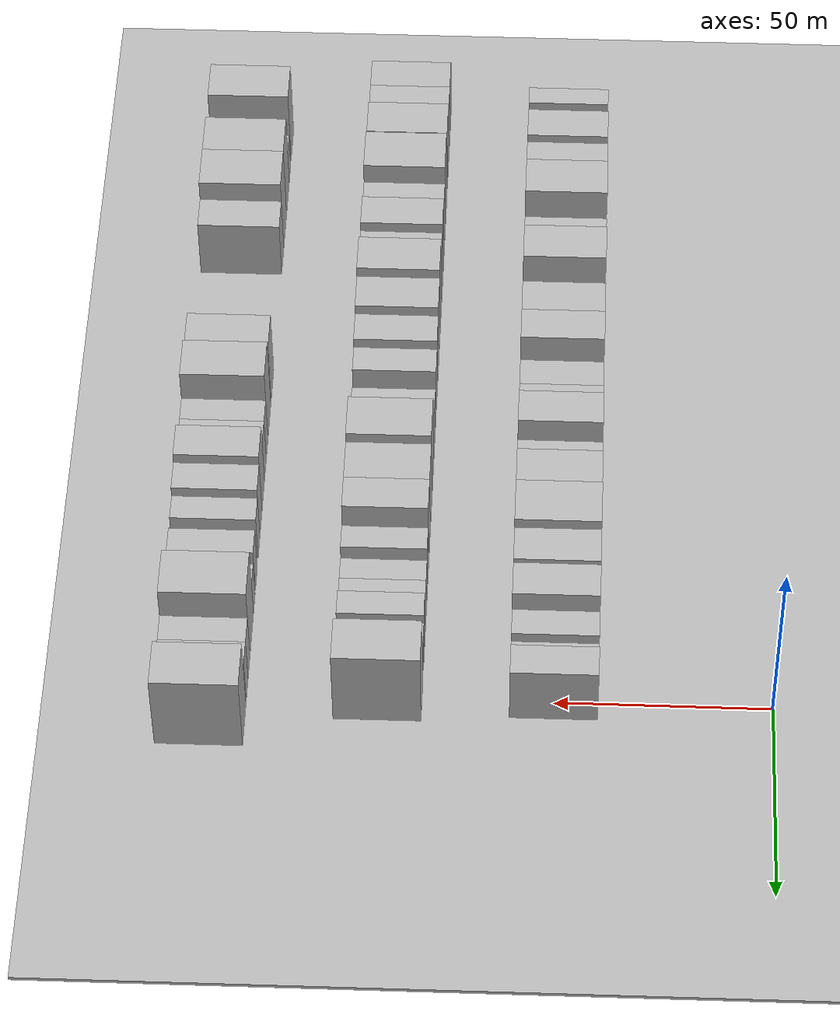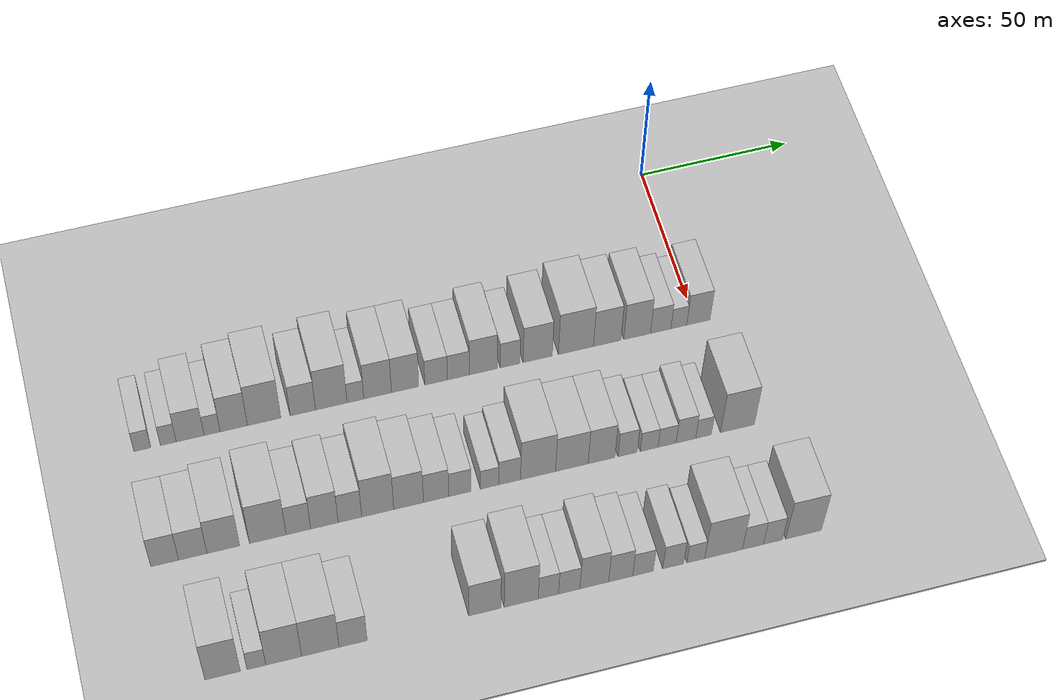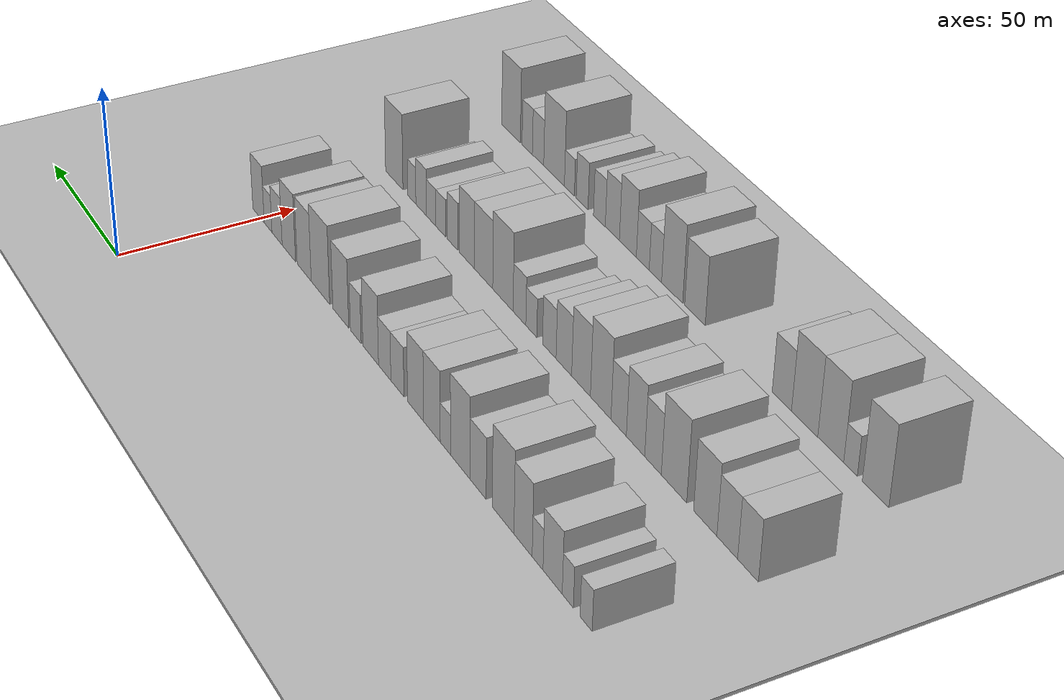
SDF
<sdf version="1.6">
 <world name="default">
  <include><name>ground_plane_1</name><uri>model://HANNAS_ground_plane</uri></include>
  <include>
   <name>ground_plane_2</name>
   <uri>model://HANNAS_ground_plane</uri>
   <pose>100 0 0  0 0 0</pose>
  </include>
  <model name="building_23">
   <static>1</static>
   <pose>50.0000 -179.2774 0 0.000000 0.000000 0.000000</pose>
   <link name="link">
    <pose>0 0 6.00 0 0 0</pose>
    <collision name="collision"><geometry><box><size>20.0000 5.2801 12.0000</size></box></geometry></collision>
    <visual name="visual">
     <cast_shadows>0</cast_shadows>
     <geometry><box><size>20.0000 5.2801 12.0000</size></box></geometry>
     <material>
      <script>
       <uri>model://HANNAS_wall/materials/scripts</uri>
       <uri>model://HANNAS_wall/materials/textures</uri>
       <name>vrc/HANNAS_wall</name>
      </script>
     </material>
    </visual>
   </link>
  </model>
  <model name="building_24">
   <static>1</static>
   <pose>50.0000 -171.1442 0 0.000000 0.000000 0.000000</pose>
   <link name="link">
    <pose>0 0 6.00 0 0 0</pose>
    <collision name="collision"><geometry><box><size>20.0000 4.9862 12.0000</size></box></geometry></collision>
    <visual name="visual">
     <cast_shadows>0</cast_shadows>
     <geometry><box><size>20.0000 4.9862 12.0000</size></box></geometry>
     <material>
      <script>
       <uri>model://HANNAS_wall/materials/scripts</uri>
       <uri>model://HANNAS_wall/materials/textures</uri>
       <name>vrc/HANNAS_wall</name>
      </script>
     </material>
    </visual>
   </link>
  </model>
  <model name="building_25">
   <static>1</static>
   <pose>50.0000 -164.2541 0 0.000000 0.000000 0.000000</pose>
   <link name="link">
    <pose>0 0 9.00 0 0 0</pose>
    <collision name="collision"><geometry><box><size>20.0000 8.7940 18.0000</size></box></geometry></collision>
    <visual name="visual">
     <cast_shadows>0</cast_shadows>
     <geometry><box><size>20.0000 8.7940 18.0000</size></box></geometry>
     <material>
      <script>
       <uri>model://HANNAS_wall/materials/scripts</uri>
       <uri>model://HANNAS_wall/materials/textures</uri>
       <name>vrc/HANNAS_wall</name>
      </script>
     </material>
    </visual>
   </link>
  </model>
  <model name="building_26">
   <static>1</static>
   <pose>50.0000 -157.3276 0 0.000000 0.000000 0.000000</pose>
   <link name="link">
    <pose>0 0 6.00 0 0 0</pose>
    <collision name="collision"><geometry><box><size>20.0000 5.0589 12.0000</size></box></geometry></collision>
    <visual name="visual">
     <cast_shadows>0</cast_shadows>
     <geometry><box><size>20.0000 5.0589 12.0000</size></box></geometry>
     <material>
      <script>
       <uri>model://HANNAS_wall/materials/scripts</uri>
       <uri>model://HANNAS_wall/materials/textures</uri>
       <name>vrc/HANNAS_wall</name>
      </script>
     </material>
    </visual>
   </link>
  </model>
  <model name="building_27">
   <static>1</static>
   <pose>50.0000 -150.4753 0 0.000000 0.000000 0.000000</pose>
   <link name="link">
    <pose>0 0 10.50 0 0 0</pose>
    <collision name="collision"><geometry><box><size>20.0000 8.6458 21.0000</size></box></geometry></collision>
    <visual name="visual">
     <cast_shadows>0</cast_shadows>
     <geometry><box><size>20.0000 8.6458 21.0000</size></box></geometry>
     <material>
      <script>
       <uri>model://HANNAS_wall/materials/scripts</uri>
       <uri>model://HANNAS_wall/materials/textures</uri>
       <name>vrc/HANNAS_wall</name>
      </script>
     </material>
    </visual>
   </link>
  </model>
  <model name="building_28">
   <static>1</static>
   <pose>50.0000 -140.8571 0 0.000000 0.000000 0.000000</pose>
   <link name="link">
    <pose>0 0 12.00 0 0 0</pose>
    <collision name="collision"><geometry><box><size>20.0000 10.5905 24.0000</size></box></geometry></collision>
    <visual name="visual">
     <cast_shadows>0</cast_shadows>
     <geometry><box><size>20.0000 10.5905 24.0000</size></box></geometry>
     <material>
      <script>
       <uri>model://HANNAS_wall/materials/scripts</uri>
       <uri>model://HANNAS_wall/materials/textures</uri>
       <name>vrc/HANNAS_wall</name>
      </script>
     </material>
    </visual>
   </link>
  </model>
  <model name="building_29">
   <static>1</static>
   <pose>50.0000 -128.5230 0 0.000000 0.000000 0.000000</pose>
   <link name="link">
    <pose>0 0 9.00 0 0 0</pose>
    <collision name="collision"><geometry><box><size>20.0000 8.0777 18.0000</size></box></geometry></collision>
    <visual name="visual">
     <cast_shadows>0</cast_shadows>
     <geometry><box><size>20.0000 8.0777 18.0000</size></box></geometry>
     <material>
      <script>
       <uri>model://HANNAS_wall/materials/scripts</uri>
       <uri>model://HANNAS_wall/materials/textures</uri>
       <name>vrc/HANNAS_wall</name>
      </script>
     </material>
    </visual>
   </link>
  </model>
  <model name="building_30">
   <static>1</static>
   <pose>50.0000 -119.4257 0 0.000000 0.000000 0.000000</pose>
   <link name="link">
    <pose>0 0 12.00 0 0 0</pose>
    <collision name="collision"><geometry><box><size>20.0000 10.1169 24.0000</size></box></geometry></collision>
    <visual name="visual">
     <cast_shadows>0</cast_shadows>
     <geometry><box><size>20.0000 10.1169 24.0000</size></box></geometry>
     <material>
      <script>
       <uri>model://HANNAS_wall/materials/scripts</uri>
       <uri>model://HANNAS_wall/materials/textures</uri>
       <name>vrc/HANNAS_wall</name>
      </script>
     </material>
    </visual>
   </link>
  </model>
  <model name="building_31">
   <static>1</static>
   <pose>50.0000 -111.6893 0 0.000000 0.000000 0.000000</pose>
   <link name="link">
    <pose>0 0 6.00 0 0 0</pose>
    <collision name="collision"><geometry><box><size>20.0000 5.3561 12.0000</size></box></geometry></collision>
    <visual name="visual">
     <cast_shadows>0</cast_shadows>
     <geometry><box><size>20.0000 5.3561 12.0000</size></box></geometry>
     <material>
      <script>
       <uri>model://HANNAS_wall/materials/scripts</uri>
       <uri>model://HANNAS_wall/materials/textures</uri>
       <name>vrc/HANNAS_wall</name>
      </script>
     </material>
    </visual>
   </link>
  </model>
  <model name="building_32">
   <static>1</static>
   <pose>50.0000 -104.5540 0 0.000000 0.000000 0.000000</pose>
   <link name="link">
    <pose>0 0 10.50 0 0 0</pose>
    <collision name="collision"><geometry><box><size>20.0000 8.9144 21.0000</size></box></geometry></collision>
    <visual name="visual">
     <cast_shadows>0</cast_shadows>
     <geometry><box><size>20.0000 8.9144 21.0000</size></box></geometry>
     <material>
      <script>
       <uri>model://HANNAS_wall/materials/scripts</uri>
       <uri>model://HANNAS_wall/materials/textures</uri>
       <name>vrc/HANNAS_wall</name>
      </script>
     </material>
    </visual>
   </link>
  </model>
  <model name="building_33">
   <static>1</static>
   <pose>50.0000 -95.7066 0 0.000000 0.000000 0.000000</pose>
   <link name="link">
    <pose>0 0 10.50 0 0 0</pose>
    <collision name="collision"><geometry><box><size>20.0000 8.7805 21.0000</size></box></geometry></collision>
    <visual name="visual">
     <cast_shadows>0</cast_shadows>
     <geometry><box><size>20.0000 8.7805 21.0000</size></box></geometry>
     <material>
      <script>
       <uri>model://HANNAS_wall/materials/scripts</uri>
       <uri>model://HANNAS_wall/materials/textures</uri>
       <name>vrc/HANNAS_wall</name>
      </script>
     </material>
    </visual>
   </link>
  </model>
  <model name="building_34">
   <static>1</static>
   <pose>50.0000 -85.6473 0 0.000000 0.000000 0.000000</pose>
   <link name="link">
    <pose>0 0 7.50 0 0 0</pose>
    <collision name="collision"><geometry><box><size>20.0000 7.3380 15.0000</size></box></geometry></collision>
    <visual name="visual">
     <cast_shadows>0</cast_shadows>
     <geometry><box><size>20.0000 7.3380 15.0000</size></box></geometry>
     <material>
      <script>
       <uri>model://HANNAS_wall/materials/scripts</uri>
       <uri>model://HANNAS_wall/materials/textures</uri>
       <name>vrc/HANNAS_wall</name>
      </script>
     </material>
    </visual>
   </link>
  </model>
  <model name="building_35">
   <static>1</static>
   <pose>50.0000 -78.4366 0 0.000000 0.000000 0.000000</pose>
   <link name="link">
    <pose>0 0 7.50 0 0 0</pose>
    <collision name="collision"><geometry><box><size>20.0000 7.0835 15.0000</size></box></geometry></collision>
    <visual name="visual">
     <cast_shadows>0</cast_shadows>
     <geometry><box><size>20.0000 7.0835 15.0000</size></box></geometry>
     <material>
      <script>
       <uri>model://HANNAS_wall/materials/scripts</uri>
       <uri>model://HANNAS_wall/materials/textures</uri>
       <name>vrc/HANNAS_wall</name>
      </script>
     </material>
    </visual>
   </link>
  </model>
  <model name="building_36">
   <static>1</static>
   <pose>50.0000 -70.3378 0 0.000000 0.000000 0.000000</pose>
   <link name="link">
    <pose>0 0 10.50 0 0 0</pose>
    <collision name="collision"><geometry><box><size>20.0000 9.1141 21.0000</size></box></geometry></collision>
    <visual name="visual">
     <cast_shadows>0</cast_shadows>
     <geometry><box><size>20.0000 9.1141 21.0000</size></box></geometry>
     <material>
      <script>
       <uri>model://HANNAS_wall/materials/scripts</uri>
       <uri>model://HANNAS_wall/materials/textures</uri>
       <name>vrc/HANNAS_wall</name>
      </script>
     </material>
    </visual>
   </link>
  </model>
  <model name="building_37">
   <static>1</static>
   <pose>50.0000 -61.5664 0 0.000000 0.000000 0.000000</pose>
   <link name="link">
    <pose>0 0 7.50 0 0 0</pose>
    <collision name="collision"><geometry><box><size>20.0000 6.4287 15.0000</size></box></geometry></collision>
    <visual name="visual">
     <cast_shadows>0</cast_shadows>
     <geometry><box><size>20.0000 6.4287 15.0000</size></box></geometry>
     <material>
      <script>
       <uri>model://HANNAS_wall/materials/scripts</uri>
       <uri>model://HANNAS_wall/materials/textures</uri>
       <name>vrc/HANNAS_wall</name>
      </script>
     </material>
    </visual>
   </link>
  </model>
  <model name="building_38">
   <static>1</static>
   <pose>50.0000 -52.5485 0 0.000000 0.000000 0.000000</pose>
   <link name="link">
    <pose>0 0 10.50 0 0 0</pose>
    <collision name="collision"><geometry><box><size>20.0000 9.6071 21.0000</size></box></geometry></collision>
    <visual name="visual">
     <cast_shadows>0</cast_shadows>
     <geometry><box><size>20.0000 9.6071 21.0000</size></box></geometry>
     <material>
      <script>
       <uri>model://HANNAS_wall/materials/scripts</uri>
       <uri>model://HANNAS_wall/materials/textures</uri>
       <name>vrc/HANNAS_wall</name>
      </script>
     </material>
    </visual>
   </link>
  </model>
  <model name="building_39">
   <static>1</static>
   <pose>50.0000 -39.9715 0 0.000000 0.000000 0.000000</pose>
   <link name="link">
    <pose>0 0 12.00 0 0 0</pose>
    <collision name="collision"><geometry><box><size>20.0000 11.5470 24.0000</size></box></geometry></collision>
    <visual name="visual">
     <cast_shadows>0</cast_shadows>
     <geometry><box><size>20.0000 11.5470 24.0000</size></box></geometry>
     <material>
      <script>
       <uri>model://HANNAS_wall/materials/scripts</uri>
       <uri>model://HANNAS_wall/materials/textures</uri>
       <name>vrc/HANNAS_wall</name>
      </script>
     </material>
    </visual>
   </link>
  </model>
  <model name="building_40">
   <static>1</static>
   <pose>50.0000 -29.6646 0 0.000000 0.000000 0.000000</pose>
   <link name="link">
    <pose>0 0 10.50 0 0 0</pose>
    <collision name="collision"><geometry><box><size>20.0000 9.0667 21.0000</size></box></geometry></collision>
    <visual name="visual">
     <cast_shadows>0</cast_shadows>
     <geometry><box><size>20.0000 9.0667 21.0000</size></box></geometry>
     <material>
      <script>
       <uri>model://HANNAS_wall/materials/scripts</uri>
       <uri>model://HANNAS_wall/materials/textures</uri>
       <name>vrc/HANNAS_wall</name>
      </script>
     </material>
    </visual>
   </link>
  </model>
  <model name="building_41">
   <static>1</static>
   <pose>50.0000 -19.7086 0 0.000000 0.000000 0.000000</pose>
   <link name="link">
    <pose>0 0 10.50 0 0 0</pose>
    <collision name="collision"><geometry><box><size>20.0000 8.8454 21.0000</size></box></geometry></collision>
    <visual name="visual">
     <cast_shadows>0</cast_shadows>
     <geometry><box><size>20.0000 8.8454 21.0000</size></box></geometry>
     <material>
      <script>
       <uri>model://HANNAS_wall/materials/scripts</uri>
       <uri>model://HANNAS_wall/materials/textures</uri>
       <name>vrc/HANNAS_wall</name>
      </script>
     </material>
    </visual>
   </link>
  </model>
  <model name="building_42">
   <static>1</static>
   <pose>50.0000 -11.8778 0 0.000000 0.000000 0.000000</pose>
   <link name="link">
    <pose>0 0 7.50 0 0 0</pose>
    <collision name="collision"><geometry><box><size>20.0000 6.8161 15.0000</size></box></geometry></collision>
    <visual name="visual">
     <cast_shadows>0</cast_shadows>
     <geometry><box><size>20.0000 6.8161 15.0000</size></box></geometry>
     <material>
      <script>
       <uri>model://HANNAS_wall/materials/scripts</uri>
       <uri>model://HANNAS_wall/materials/textures</uri>
       <name>vrc/HANNAS_wall</name>
      </script>
     </material>
    </visual>
   </link>
  </model>
  <model name="building_43">
   <static>1</static>
   <pose>50.0000 -5.8425 0 0.000000 0.000000 0.000000</pose>
   <link name="link">
    <pose>0 0 6.00 0 0 0</pose>
    <collision name="collision"><geometry><box><size>20.0000 5.2546 12.0000</size></box></geometry></collision>
    <visual name="visual">
     <cast_shadows>0</cast_shadows>
     <geometry><box><size>20.0000 5.2546 12.0000</size></box></geometry>
     <material>
      <script>
       <uri>model://HANNAS_wall/materials/scripts</uri>
       <uri>model://HANNAS_wall/materials/textures</uri>
       <name>vrc/HANNAS_wall</name>
      </script>
     </material>
    </visual>
   </link>
  </model>
  <model name="building_44">
   <static>1</static>
   <pose>50.0000 0.6852 0 0.000000 0.000000 0.000000</pose>
   <link name="link">
    <pose>0 0 9.00 0 0 0</pose>
    <collision name="collision"><geometry><box><size>20.0000 7.8006 18.0000</size></box></geometry></collision>
    <visual name="visual">
     <cast_shadows>0</cast_shadows>
     <geometry><box><size>20.0000 7.8006 18.0000</size></box></geometry>
     <material>
      <script>
       <uri>model://HANNAS_wall/materials/scripts</uri>
       <uri>model://HANNAS_wall/materials/textures</uri>
       <name>vrc/HANNAS_wall</name>
      </script>
     </material>
    </visual>
   </link>
  </model>
  <model name="building_109">
   <static>1</static>
   <pose>90.0000 -179.9426 0 0.000000 0.000000 0.000000</pose>
   <link name="link">
    <pose>0 0 9.00 0 0 0</pose>
    <collision name="collision"><geometry><box><size>20.0000 8.5297 18.0000</size></box></geometry></collision>
    <visual name="visual">
     <cast_shadows>0</cast_shadows>
     <geometry><box><size>20.0000 8.5297 18.0000</size></box></geometry>
     <material>
      <script>
       <uri>model://HANNAS_wall/materials/scripts</uri>
       <uri>model://HANNAS_wall/materials/textures</uri>
       <name>vrc/HANNAS_wall</name>
      </script>
     </material>
    </visual>
   </link>
  </model>
  <model name="building_110">
   <static>1</static>
   <pose>90.0000 -171.3326 0 0.000000 0.000000 0.000000</pose>
   <link name="link">
    <pose>0 0 9.00 0 0 0</pose>
    <collision name="collision"><geometry><box><size>20.0000 8.6903 18.0000</size></box></geometry></collision>
    <visual name="visual">
     <cast_shadows>0</cast_shadows>
     <geometry><box><size>20.0000 8.6903 18.0000</size></box></geometry>
     <material>
      <script>
       <uri>model://HANNAS_wall/materials/scripts</uri>
       <uri>model://HANNAS_wall/materials/textures</uri>
       <name>vrc/HANNAS_wall</name>
      </script>
     </material>
    </visual>
   </link>
  </model>
  <model name="building_111">
   <static>1</static>
   <pose>90.0000 -161.9852 0 0.000000 0.000000 0.000000</pose>
   <link name="link">
    <pose>0 0 10.50 0 0 0</pose>
    <collision name="collision"><geometry><box><size>20.0000 10.0046 21.0000</size></box></geometry></collision>
    <visual name="visual">
     <cast_shadows>0</cast_shadows>
     <geometry><box><size>20.0000 10.0046 21.0000</size></box></geometry>
     <material>
      <script>
       <uri>model://HANNAS_wall/materials/scripts</uri>
       <uri>model://HANNAS_wall/materials/textures</uri>
       <name>vrc/HANNAS_wall</name>
      </script>
     </material>
    </visual>
   </link>
  </model>
  <model name="building_112">
   <static>1</static>
   <pose>90.0000 -148.3180 0 0.000000 0.000000 0.000000</pose>
   <link name="link">
    <pose>0 0 12.00 0 0 0</pose>
    <collision name="collision"><geometry><box><size>20.0000 11.3298 24.0000</size></box></geometry></collision>
    <visual name="visual">
     <cast_shadows>0</cast_shadows>
     <geometry><box><size>20.0000 11.3298 24.0000</size></box></geometry>
     <material>
      <script>
       <uri>model://HANNAS_wall/materials/scripts</uri>
       <uri>model://HANNAS_wall/materials/textures</uri>
       <name>vrc/HANNAS_wall</name>
      </script>
     </material>
    </visual>
   </link>
  </model>
  <model name="building_113">
   <static>1</static>
   <pose>90.0000 -138.8580 0 0.000000 0.000000 0.000000</pose>
   <link name="link">
    <pose>0 0 9.00 0 0 0</pose>
    <collision name="collision"><geometry><box><size>20.0000 7.5901 18.0000</size></box></geometry></collision>
    <visual name="visual">
     <cast_shadows>0</cast_shadows>
     <geometry><box><size>20.0000 7.5901 18.0000</size></box></geometry>
     <material>
      <script>
       <uri>model://HANNAS_wall/materials/scripts</uri>
       <uri>model://HANNAS_wall/materials/textures</uri>
       <name>vrc/HANNAS_wall</name>
      </script>
     </material>
    </visual>
   </link>
  </model>
  <model name="building_114">
   <static>1</static>
   <pose>90.0000 -130.7820 0 0.000000 0.000000 0.000000</pose>
   <link name="link">
    <pose>0 0 10.50 0 0 0</pose>
    <collision name="collision"><geometry><box><size>20.0000 8.5620 21.0000</size></box></geometry></collision>
    <visual name="visual">
     <cast_shadows>0</cast_shadows>
     <geometry><box><size>20.0000 8.5620 21.0000</size></box></geometry>
     <material>
      <script>
       <uri>model://HANNAS_wall/materials/scripts</uri>
       <uri>model://HANNAS_wall/materials/textures</uri>
       <name>vrc/HANNAS_wall</name>
      </script>
     </material>
    </visual>
   </link>
  </model>
  <model name="building_115">
   <static>1</static>
   <pose>90.0000 -122.8321 0 0.000000 0.000000 0.000000</pose>
   <link name="link">
    <pose>0 0 9.00 0 0 0</pose>
    <collision name="collision"><geometry><box><size>20.0000 7.3377 18.0000</size></box></geometry></collision>
    <visual name="visual">
     <cast_shadows>0</cast_shadows>
     <geometry><box><size>20.0000 7.3377 18.0000</size></box></geometry>
     <material>
      <script>
       <uri>model://HANNAS_wall/materials/scripts</uri>
       <uri>model://HANNAS_wall/materials/textures</uri>
       <name>vrc/HANNAS_wall</name>
      </script>
     </material>
    </visual>
   </link>
  </model>
  <model name="building_116">
   <static>1</static>
   <pose>90.0000 -114.1641 0 0.000000 0.000000 0.000000</pose>
   <link name="link">
    <pose>0 0 12.00 0 0 0</pose>
    <collision name="collision"><geometry><box><size>20.0000 9.9984 24.0000</size></box></geometry></collision>
    <visual name="visual">
     <cast_shadows>0</cast_shadows>
     <geometry><box><size>20.0000 9.9984 24.0000</size></box></geometry>
     <material>
      <script>
       <uri>model://HANNAS_wall/materials/scripts</uri>
       <uri>model://HANNAS_wall/materials/textures</uri>
       <name>vrc/HANNAS_wall</name>
      </script>
     </material>
    </visual>
   </link>
  </model>
  <model name="building_117">
   <static>1</static>
   <pose>90.0000 -104.4893 0 0.000000 0.000000 0.000000</pose>
   <link name="link">
    <pose>0 0 10.50 0 0 0</pose>
    <collision name="collision"><geometry><box><size>20.0000 9.3511 21.0000</size></box></geometry></collision>
    <visual name="visual">
     <cast_shadows>0</cast_shadows>
     <geometry><box><size>20.0000 9.3511 21.0000</size></box></geometry>
     <material>
      <script>
       <uri>model://HANNAS_wall/materials/scripts</uri>
       <uri>model://HANNAS_wall/materials/textures</uri>
       <name>vrc/HANNAS_wall</name>
      </script>
     </material>
    </visual>
   </link>
  </model>
  <model name="building_118">
   <static>1</static>
   <pose>90.0000 -95.8383 0 0.000000 0.000000 0.000000</pose>
   <link name="link">
    <pose>0 0 9.00 0 0 0</pose>
    <collision name="collision"><geometry><box><size>20.0000 7.9510 18.0000</size></box></geometry></collision>
    <visual name="visual">
     <cast_shadows>0</cast_shadows>
     <geometry><box><size>20.0000 7.9510 18.0000</size></box></geometry>
     <material>
      <script>
       <uri>model://HANNAS_wall/materials/scripts</uri>
       <uri>model://HANNAS_wall/materials/textures</uri>
       <name>vrc/HANNAS_wall</name>
      </script>
     </material>
    </visual>
   </link>
  </model>
  <model name="building_119">
   <static>1</static>
   <pose>90.0000 -88.3552 0 0.000000 0.000000 0.000000</pose>
   <link name="link">
    <pose>0 0 7.50 0 0 0</pose>
    <collision name="collision"><geometry><box><size>20.0000 7.0152 15.0000</size></box></geometry></collision>
    <visual name="visual">
     <cast_shadows>0</cast_shadows>
     <geometry><box><size>20.0000 7.0152 15.0000</size></box></geometry>
     <material>
      <script>
       <uri>model://HANNAS_wall/materials/scripts</uri>
       <uri>model://HANNAS_wall/materials/textures</uri>
       <name>vrc/HANNAS_wall</name>
      </script>
     </material>
    </visual>
   </link>
  </model>
  <model name="building_120">
   <static>1</static>
   <pose>90.0000 -78.9413 0 0.000000 0.000000 0.000000</pose>
   <link name="link">
    <pose>0 0 6.00 0 0 0</pose>
    <collision name="collision"><geometry><box><size>20.0000 5.8127 12.0000</size></box></geometry></collision>
    <visual name="visual">
     <cast_shadows>0</cast_shadows>
     <geometry><box><size>20.0000 5.8127 12.0000</size></box></geometry>
     <material>
      <script>
       <uri>model://HANNAS_wall/materials/scripts</uri>
       <uri>model://HANNAS_wall/materials/textures</uri>
       <name>vrc/HANNAS_wall</name>
      </script>
     </material>
    </visual>
   </link>
  </model>
  <model name="building_121">
   <static>1</static>
   <pose>90.0000 -72.5960 0 0.000000 0.000000 0.000000</pose>
   <link name="link">
    <pose>0 0 7.50 0 0 0</pose>
    <collision name="collision"><geometry><box><size>20.0000 6.8779 15.0000</size></box></geometry></collision>
    <visual name="visual">
     <cast_shadows>0</cast_shadows>
     <geometry><box><size>20.0000 6.8779 15.0000</size></box></geometry>
     <material>
      <script>
       <uri>model://HANNAS_wall/materials/scripts</uri>
       <uri>model://HANNAS_wall/materials/textures</uri>
       <name>vrc/HANNAS_wall</name>
      </script>
     </material>
    </visual>
   </link>
  </model>
  <model name="building_122">
   <static>1</static>
   <pose>90.0000 -63.5670 0 0.000000 0.000000 0.000000</pose>
   <link name="link">
    <pose>0 0 12.00 0 0 0</pose>
    <collision name="collision"><geometry><box><size>20.0000 11.1801 24.0000</size></box></geometry></collision>
    <visual name="visual">
     <cast_shadows>0</cast_shadows>
     <geometry><box><size>20.0000 11.1801 24.0000</size></box></geometry>
     <material>
      <script>
       <uri>model://HANNAS_wall/materials/scripts</uri>
       <uri>model://HANNAS_wall/materials/textures</uri>
       <name>vrc/HANNAS_wall</name>
      </script>
     </material>
    </visual>
   </link>
  </model>
  <model name="building_123">
   <static>1</static>
   <pose>90.0000 -52.7587 0 0.000000 0.000000 0.000000</pose>
   <link name="link">
    <pose>0 0 10.50 0 0 0</pose>
    <collision name="collision"><geometry><box><size>20.0000 10.4363 21.0000</size></box></geometry></collision>
    <visual name="visual">
     <cast_shadows>0</cast_shadows>
     <geometry><box><size>20.0000 10.4363 21.0000</size></box></geometry>
     <material>
      <script>
       <uri>model://HANNAS_wall/materials/scripts</uri>
       <uri>model://HANNAS_wall/materials/textures</uri>
       <name>vrc/HANNAS_wall</name>
      </script>
     </material>
    </visual>
   </link>
  </model>
  <model name="building_124">
   <static>1</static>
   <pose>90.0000 -43.2517 0 0.000000 0.000000 0.000000</pose>
   <link name="link">
    <pose>0 0 10.50 0 0 0</pose>
    <collision name="collision"><geometry><box><size>20.0000 8.5777 21.0000</size></box></geometry></collision>
    <visual name="visual">
     <cast_shadows>0</cast_shadows>
     <geometry><box><size>20.0000 8.5777 21.0000</size></box></geometry>
     <material>
      <script>
       <uri>model://HANNAS_wall/materials/scripts</uri>
       <uri>model://HANNAS_wall/materials/textures</uri>
       <name>vrc/HANNAS_wall</name>
      </script>
     </material>
    </visual>
   </link>
  </model>
  <model name="building_125">
   <static>1</static>
   <pose>90.0000 -34.8778 0 0.000000 0.000000 0.000000</pose>
   <link name="link">
    <pose>0 0 7.50 0 0 0</pose>
    <collision name="collision"><geometry><box><size>20.0000 6.1701 15.0000</size></box></geometry></collision>
    <visual name="visual">
     <cast_shadows>0</cast_shadows>
     <geometry><box><size>20.0000 6.1701 15.0000</size></box></geometry>
     <material>
      <script>
       <uri>model://HANNAS_wall/materials/scripts</uri>
       <uri>model://HANNAS_wall/materials/textures</uri>
       <name>vrc/HANNAS_wall</name>
      </script>
     </material>
    </visual>
   </link>
  </model>
  <model name="building_126">
   <static>1</static>
   <pose>90.0000 -27.9295 0 0.000000 0.000000 0.000000</pose>
   <link name="link">
    <pose>0 0 6.00 0 0 0</pose>
    <collision name="collision"><geometry><box><size>20.0000 5.7265 12.0000</size></box></geometry></collision>
    <visual name="visual">
     <cast_shadows>0</cast_shadows>
     <geometry><box><size>20.0000 5.7265 12.0000</size></box></geometry>
     <material>
      <script>
       <uri>model://HANNAS_wall/materials/scripts</uri>
       <uri>model://HANNAS_wall/materials/textures</uri>
       <name>vrc/HANNAS_wall</name>
      </script>
     </material>
    </visual>
   </link>
  </model>
  <model name="building_127">
   <static>1</static>
   <pose>90.0000 -22.1473 0 0.000000 0.000000 0.000000</pose>
   <link name="link">
    <pose>0 0 6.00 0 0 0</pose>
    <collision name="collision"><geometry><box><size>20.0000 5.8379 12.0000</size></box></geometry></collision>
    <visual name="visual">
     <cast_shadows>0</cast_shadows>
     <geometry><box><size>20.0000 5.8379 12.0000</size></box></geometry>
     <material>
      <script>
       <uri>model://HANNAS_wall/materials/scripts</uri>
       <uri>model://HANNAS_wall/materials/textures</uri>
       <name>vrc/HANNAS_wall</name>
      </script>
     </material>
    </visual>
   </link>
  </model>
  <model name="building_128">
   <static>1</static>
   <pose>90.0000 -16.0392 0 0.000000 0.000000 0.000000</pose>
   <link name="link">
    <pose>0 0 7.50 0 0 0</pose>
    <collision name="collision"><geometry><box><size>20.0000 6.3785 15.0000</size></box></geometry></collision>
    <visual name="visual">
     <cast_shadows>0</cast_shadows>
     <geometry><box><size>20.0000 6.3785 15.0000</size></box></geometry>
     <material>
      <script>
       <uri>model://HANNAS_wall/materials/scripts</uri>
       <uri>model://HANNAS_wall/materials/textures</uri>
       <name>vrc/HANNAS_wall</name>
      </script>
     </material>
    </visual>
   </link>
  </model>
  <model name="building_129">
   <static>1</static>
   <pose>90.0000 -10.3151 0 0.000000 0.000000 0.000000</pose>
   <link name="link">
    <pose>0 0 6.00 0 0 0</pose>
    <collision name="collision"><geometry><box><size>20.0000 5.0696 12.0000</size></box></geometry></collision>
    <visual name="visual">
     <cast_shadows>0</cast_shadows>
     <geometry><box><size>20.0000 5.0696 12.0000</size></box></geometry>
     <material>
      <script>
       <uri>model://HANNAS_wall/materials/scripts</uri>
       <uri>model://HANNAS_wall/materials/textures</uri>
       <name>vrc/HANNAS_wall</name>
      </script>
     </material>
    </visual>
   </link>
  </model>
  <model name="building_130">
   <static>1</static>
   <pose>90.0000 0.7229 0 0.000000 0.000000 0.000000</pose>
   <link name="link">
    <pose>0 0 12.00 0 0 0</pose>
    <collision name="collision"><geometry><box><size>20.0000 11.0064 24.0000</size></box></geometry></collision>
    <visual name="visual">
     <cast_shadows>0</cast_shadows>
     <geometry><box><size>20.0000 11.0064 24.0000</size></box></geometry>
     <material>
      <script>
       <uri>model://HANNAS_wall/materials/scripts</uri>
       <uri>model://HANNAS_wall/materials/textures</uri>
       <name>vrc/HANNAS_wall</name>
      </script>
     </material>
    </visual>
   </link>
  </model>
  <model name="building_192">
   <static>1</static>
   <pose>130.0000 -170.4332 0 0.000000 0.000000 0.000000</pose>
   <link name="link">
    <pose>0 0 12.00 0 0 0</pose>
    <collision name="collision"><geometry><box><size>20.0000 10.5774 24.0000</size></box></geometry></collision>
    <visual name="visual">
     <cast_shadows>0</cast_shadows>
     <geometry><box><size>20.0000 10.5774 24.0000</size></box></geometry>
     <material>
      <script>
       <uri>model://HANNAS_wall/materials/scripts</uri>
       <uri>model://HANNAS_wall/materials/textures</uri>
       <name>vrc/HANNAS_wall</name>
      </script>
     </material>
    </visual>
   </link>
  </model>
  <model name="building_193">
   <static>1</static>
   <pose>130.0000 -160.3518 0 0.000000 0.000000 0.000000</pose>
   <link name="link">
    <pose>0 0 6.00 0 0 0</pose>
    <collision name="collision"><geometry><box><size>20.0000 5.5854 12.0000</size></box></geometry></collision>
    <visual name="visual">
     <cast_shadows>0</cast_shadows>
     <geometry><box><size>20.0000 5.5854 12.0000</size></box></geometry>
     <material>
      <script>
       <uri>model://HANNAS_wall/materials/scripts</uri>
       <uri>model://HANNAS_wall/materials/textures</uri>
       <name>vrc/HANNAS_wall</name>
      </script>
     </material>
    </visual>
   </link>
  </model>
  <model name="building_194">
   <static>1</static>
   <pose>130.0000 -152.1588 0 0.000000 0.000000 0.000000</pose>
   <link name="link">
    <pose>0 0 12.00 0 0 0</pose>
    <collision name="collision"><geometry><box><size>20.0000 10.8006 24.0000</size></box></geometry></collision>
    <visual name="visual">
     <cast_shadows>0</cast_shadows>
     <geometry><box><size>20.0000 10.8006 24.0000</size></box></geometry>
     <material>
      <script>
       <uri>model://HANNAS_wall/materials/scripts</uri>
       <uri>model://HANNAS_wall/materials/textures</uri>
       <name>vrc/HANNAS_wall</name>
      </script>
     </material>
    </visual>
   </link>
  </model>
  <model name="building_195">
   <static>1</static>
   <pose>130.0000 -141.1248 0 0.000000 0.000000 0.000000</pose>
   <link name="link">
    <pose>0 0 12.00 0 0 0</pose>
    <collision name="collision"><geometry><box><size>20.0000 11.2674 24.0000</size></box></geometry></collision>
    <visual name="visual">
     <cast_shadows>0</cast_shadows>
     <geometry><box><size>20.0000 11.2674 24.0000</size></box></geometry>
     <material>
      <script>
       <uri>model://HANNAS_wall/materials/scripts</uri>
       <uri>model://HANNAS_wall/materials/textures</uri>
       <name>vrc/HANNAS_wall</name>
      </script>
     </material>
    </visual>
   </link>
  </model>
  <model name="building_196">
   <static>1</static>
   <pose>130.0000 -131.2471 0 0.000000 0.000000 0.000000</pose>
   <link name="link">
    <pose>0 0 9.00 0 0 0</pose>
    <collision name="collision"><geometry><box><size>20.0000 8.4880 18.0000</size></box></geometry></collision>
    <visual name="visual">
     <cast_shadows>0</cast_shadows>
     <geometry><box><size>20.0000 8.4880 18.0000</size></box></geometry>
     <material>
      <script>
       <uri>model://HANNAS_wall/materials/scripts</uri>
       <uri>model://HANNAS_wall/materials/textures</uri>
       <name>vrc/HANNAS_wall</name>
      </script>
     </material>
    </visual>
   </link>
  </model>
  <model name="building_197">
   <static>1</static>
   <pose>130.0000 -91.1136 0 0.000000 0.000000 0.000000</pose>
   <link name="link">
    <pose>0 0 10.50 0 0 0</pose>
    <collision name="collision"><geometry><box><size>20.0000 9.9263 21.0000</size></box></geometry></collision>
    <visual name="visual">
     <cast_shadows>0</cast_shadows>
     <geometry><box><size>20.0000 9.9263 21.0000</size></box></geometry>
     <material>
      <script>
       <uri>model://HANNAS_wall/materials/scripts</uri>
       <uri>model://HANNAS_wall/materials/textures</uri>
       <name>vrc/HANNAS_wall</name>
      </script>
     </material>
    </visual>
   </link>
  </model>
  <model name="building_198">
   <static>1</static>
   <pose>130.0000 -79.8930 0 0.000000 0.000000 0.000000</pose>
   <link name="link">
    <pose>0 0 12.00 0 0 0</pose>
    <collision name="collision"><geometry><box><size>20.0000 10.5149 24.0000</size></box></geometry></collision>
    <visual name="visual">
     <cast_shadows>0</cast_shadows>
     <geometry><box><size>20.0000 10.5149 24.0000</size></box></geometry>
     <material>
      <script>
       <uri>model://HANNAS_wall/materials/scripts</uri>
       <uri>model://HANNAS_wall/materials/textures</uri>
       <name>vrc/HANNAS_wall</name>
      </script>
     </material>
    </visual>
   </link>
  </model>
  <model name="building_199">
   <static>1</static>
   <pose>130.0000 -71.4931 0 0.000000 0.000000 0.000000</pose>
   <link name="link">
    <pose>0 0 7.50 0 0 0</pose>
    <collision name="collision"><geometry><box><size>20.0000 6.2848 15.0000</size></box></geometry></collision>
    <visual name="visual">
     <cast_shadows>0</cast_shadows>
     <geometry><box><size>20.0000 6.2848 15.0000</size></box></geometry>
     <material>
      <script>
       <uri>model://HANNAS_wall/materials/scripts</uri>
       <uri>model://HANNAS_wall/materials/textures</uri>
       <name>vrc/HANNAS_wall</name>
      </script>
     </material>
    </visual>
   </link>
  </model>
  <model name="building_200">
   <static>1</static>
   <pose>130.0000 -65.0353 0 0.000000 0.000000 0.000000</pose>
   <link name="link">
    <pose>0 0 7.50 0 0 0</pose>
    <collision name="collision"><geometry><box><size>20.0000 6.6307 15.0000</size></box></geometry></collision>
    <visual name="visual">
     <cast_shadows>0</cast_shadows>
     <geometry><box><size>20.0000 6.6307 15.0000</size></box></geometry>
     <material>
      <script>
       <uri>model://HANNAS_wall/materials/scripts</uri>
       <uri>model://HANNAS_wall/materials/textures</uri>
       <name>vrc/HANNAS_wall</name>
      </script>
     </material>
    </visual>
   </link>
  </model>
  <model name="building_201">
   <static>1</static>
   <pose>130.0000 -57.2645 0 0.000000 0.000000 0.000000</pose>
   <link name="link">
    <pose>0 0 10.50 0 0 0</pose>
    <collision name="collision"><geometry><box><size>20.0000 8.9109 21.0000</size></box></geometry></collision>
    <visual name="visual">
     <cast_shadows>0</cast_shadows>
     <geometry><box><size>20.0000 8.9109 21.0000</size></box></geometry>
     <material>
      <script>
       <uri>model://HANNAS_wall/materials/scripts</uri>
       <uri>model://HANNAS_wall/materials/textures</uri>
       <name>vrc/HANNAS_wall</name>
      </script>
     </material>
    </visual>
   </link>
  </model>
  <model name="building_202">
   <static>1</static>
   <pose>130.0000 -49.0530 0 0.000000 0.000000 0.000000</pose>
   <link name="link">
    <pose>0 0 9.00 0 0 0</pose>
    <collision name="collision"><geometry><box><size>20.0000 7.5122 18.0000</size></box></geometry></collision>
    <visual name="visual">
     <cast_shadows>0</cast_shadows>
     <geometry><box><size>20.0000 7.5122 18.0000</size></box></geometry>
     <material>
      <script>
       <uri>model://HANNAS_wall/materials/scripts</uri>
       <uri>model://HANNAS_wall/materials/textures</uri>
       <name>vrc/HANNAS_wall</name>
      </script>
     </material>
    </visual>
   </link>
  </model>
  <model name="building_203">
   <static>1</static>
   <pose>130.0000 -42.0806 0 0.000000 0.000000 0.000000</pose>
   <link name="link">
    <pose>0 0 7.50 0 0 0</pose>
    <collision name="collision"><geometry><box><size>20.0000 6.4326 15.0000</size></box></geometry></collision>
    <visual name="visual">
     <cast_shadows>0</cast_shadows>
     <geometry><box><size>20.0000 6.4326 15.0000</size></box></geometry>
     <material>
      <script>
       <uri>model://HANNAS_wall/materials/scripts</uri>
       <uri>model://HANNAS_wall/materials/textures</uri>
       <name>vrc/HANNAS_wall</name>
      </script>
     </material>
    </visual>
   </link>
  </model>
  <model name="building_204">
   <static>1</static>
   <pose>130.0000 -32.5860 0 0.000000 0.000000 0.000000</pose>
   <link name="link">
    <pose>0 0 7.50 0 0 0</pose>
    <collision name="collision"><geometry><box><size>20.0000 6.5565 15.0000</size></box></geometry></collision>
    <visual name="visual">
     <cast_shadows>0</cast_shadows>
     <geometry><box><size>20.0000 6.5565 15.0000</size></box></geometry>
     <material>
      <script>
       <uri>model://HANNAS_wall/materials/scripts</uri>
       <uri>model://HANNAS_wall/materials/textures</uri>
       <name>vrc/HANNAS_wall</name>
      </script>
     </material>
    </visual>
   </link>
  </model>
  <model name="building_205">
   <static>1</static>
   <pose>130.0000 -25.4964 0 0.000000 0.000000 0.000000</pose>
   <link name="link">
    <pose>0 0 6.00 0 0 0</pose>
    <collision name="collision"><geometry><box><size>20.0000 5.6228 12.0000</size></box></geometry></collision>
    <visual name="visual">
     <cast_shadows>0</cast_shadows>
     <geometry><box><size>20.0000 5.6228 12.0000</size></box></geometry>
     <material>
      <script>
       <uri>model://HANNAS_wall/materials/scripts</uri>
       <uri>model://HANNAS_wall/materials/textures</uri>
       <name>vrc/HANNAS_wall</name>
      </script>
     </material>
    </visual>
   </link>
  </model>
  <model name="building_206">
   <static>1</static>
   <pose>130.0000 -16.7360 0 0.000000 0.000000 0.000000</pose>
   <link name="link">
    <pose>0 0 12.00 0 0 0</pose>
    <collision name="collision"><geometry><box><size>20.0000 11.8979 24.0000</size></box></geometry></collision>
    <visual name="visual">
     <cast_shadows>0</cast_shadows>
     <geometry><box><size>20.0000 11.8979 24.0000</size></box></geometry>
     <material>
      <script>
       <uri>model://HANNAS_wall/materials/scripts</uri>
       <uri>model://HANNAS_wall/materials/textures</uri>
       <name>vrc/HANNAS_wall</name>
      </script>
     </material>
    </visual>
   </link>
  </model>
  <model name="building_207">
   <static>1</static>
   <pose>130.0000 -7.4482 0 0.000000 0.000000 0.000000</pose>
   <link name="link">
    <pose>0 0 7.50 0 0 0</pose>
    <collision name="collision"><geometry><box><size>20.0000 6.6776 15.0000</size></box></geometry></collision>
    <visual name="visual">
     <cast_shadows>0</cast_shadows>
     <geometry><box><size>20.0000 6.6776 15.0000</size></box></geometry>
     <material>
      <script>
       <uri>model://HANNAS_wall/materials/scripts</uri>
       <uri>model://HANNAS_wall/materials/textures</uri>
       <name>vrc/HANNAS_wall</name>
      </script>
     </material>
    </visual>
   </link>
  </model>
  <model name="building_208">
   <static>1</static>
   <pose>130.0000 -1.0555 0 0.000000 0.000000 0.000000</pose>
   <link name="link">
    <pose>0 0 7.50 0 0 0</pose>
    <collision name="collision"><geometry><box><size>20.0000 6.1079 15.0000</size></box></geometry></collision>
    <visual name="visual">
     <cast_shadows>0</cast_shadows>
     <geometry><box><size>20.0000 6.1079 15.0000</size></box></geometry>
     <material>
      <script>
       <uri>model://HANNAS_wall/materials/scripts</uri>
       <uri>model://HANNAS_wall/materials/textures</uri>
       <name>vrc/HANNAS_wall</name>
      </script>
     </material>
    </visual>
   </link>
  </model>
  <model name="building_209">
   <static>1</static>
   <pose>130.0000 8.6635 0 0.000000 0.000000 0.000000</pose>
   <link name="link">
    <pose>0 0 12.00 0 0 0</pose>
    <collision name="collision"><geometry><box><size>20.0000 11.3301 24.0000</size></box></geometry></collision>
    <visual name="visual">
     <cast_shadows>0</cast_shadows>
     <geometry><box><size>20.0000 11.3301 24.0000</size></box></geometry>
     <material>
      <script>
       <uri>model://HANNAS_wall/materials/scripts</uri>
       <uri>model://HANNAS_wall/materials/textures</uri>
       <name>vrc/HANNAS_wall</name>
      </script>
     </material>
    </visual>
   </link>
  </model>
 </world>
</sdf>
